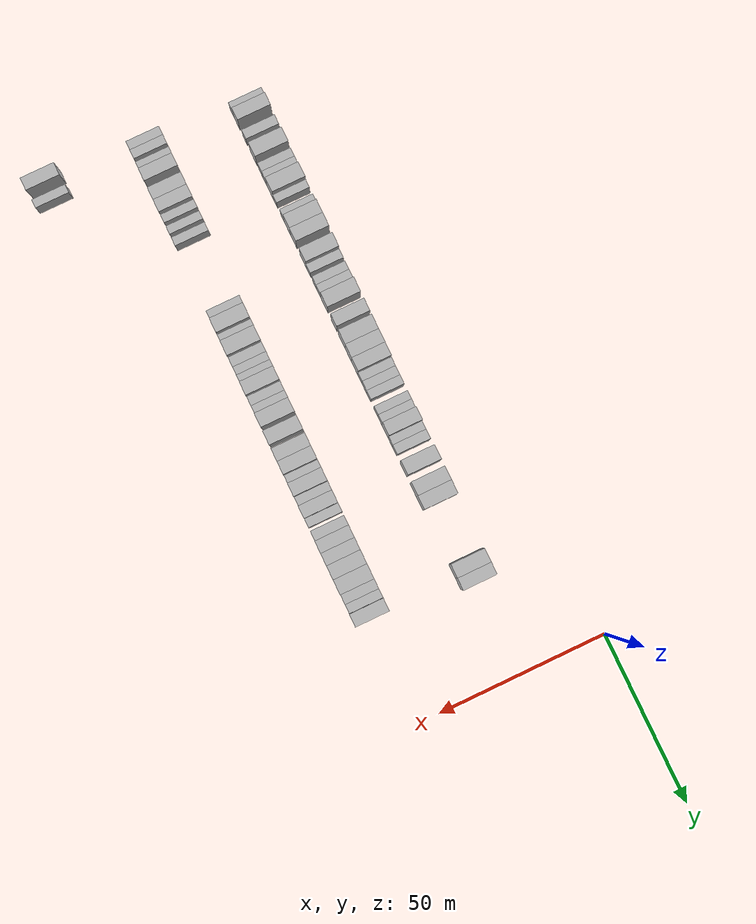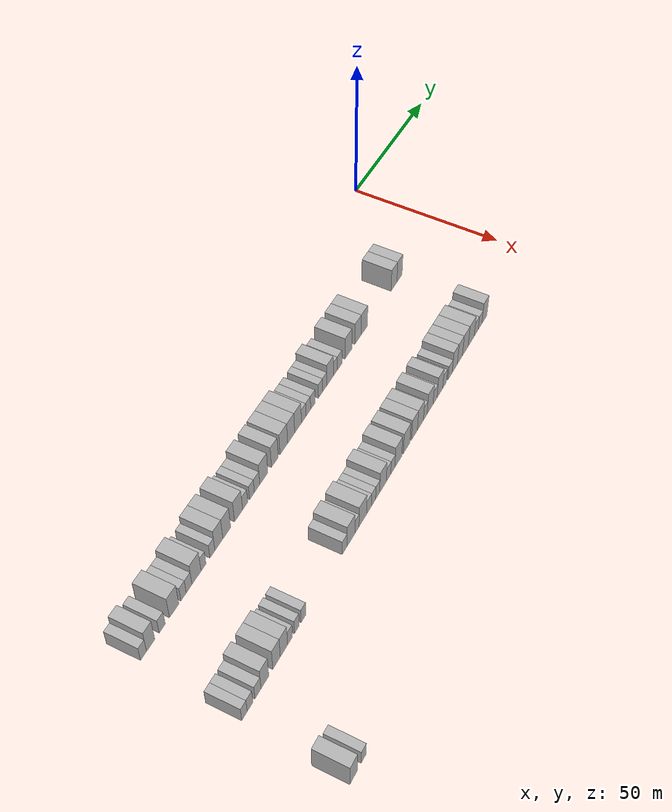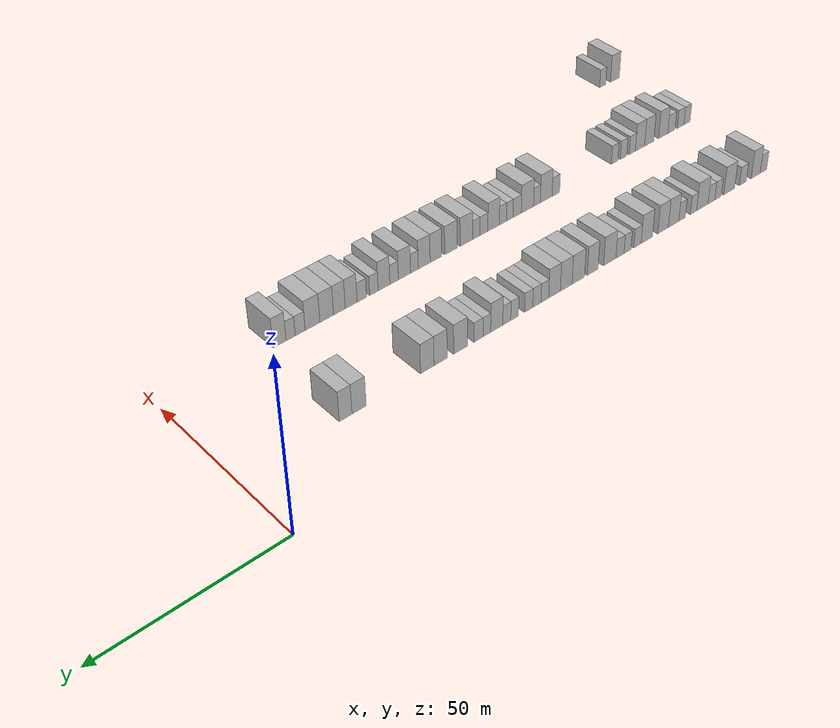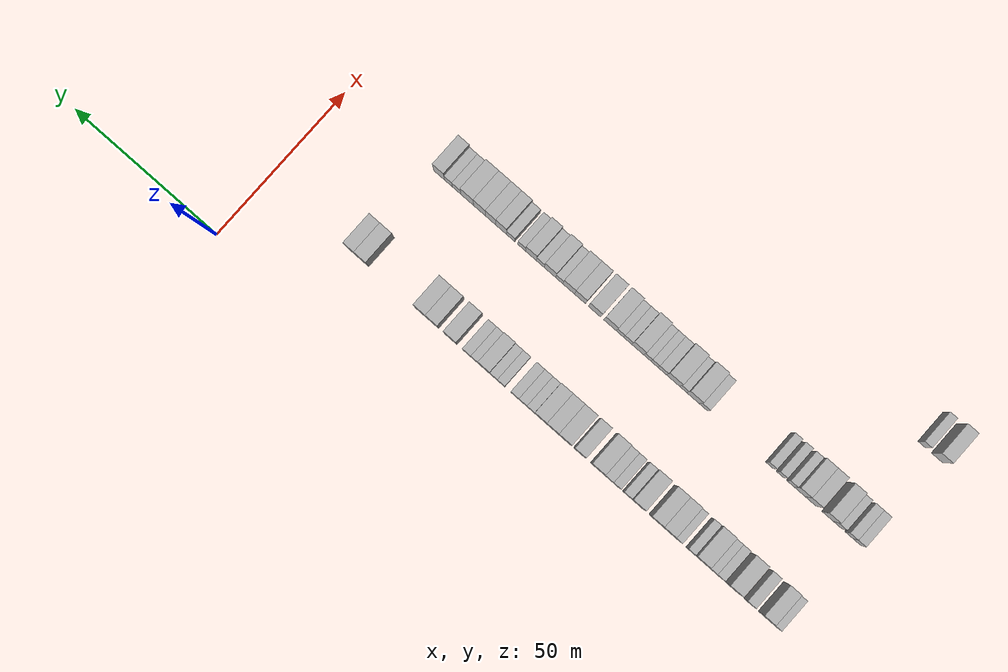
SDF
<sdf version="1.6">
 <world name="default">
  <model name="building_65">
   <static>1</static>
   <pose>25.0000 -173.8294 0 0.000000 0.000000 0.000000</pose>
   <link name="link">
    <pose>0 0 3.00 0 0 0</pose>
    <collision name="collision"><geometry><box><size>10.0000 2.7336 6.0000</size></box></geometry></collision>
    <visual name="visual">
     <cast_shadows>0</cast_shadows>
     <geometry><box><size>10.0000 2.7336 6.0000</size></box></geometry>
     <material>
      <script>
       <uri>model://HANNAS_wall/materials/scripts</uri>
       <uri>model://HANNAS_wall/materials/textures</uri>
       <name>vrc/HANNAS_wall</name>
      </script>
     </material>
    </visual>
   </link>
  </model>
  <model name="building_66">
   <static>1</static>
   <pose>25.0000 -170.5911 0 0.000000 0.000000 0.000000</pose>
   <link name="link">
    <pose>0 0 4.50 0 0 0</pose>
    <collision name="collision"><geometry><box><size>10.0000 3.7430 9.0000</size></box></geometry></collision>
    <visual name="visual">
     <cast_shadows>0</cast_shadows>
     <geometry><box><size>10.0000 3.7430 9.0000</size></box></geometry>
     <material>
      <script>
       <uri>model://HANNAS_wall/materials/scripts</uri>
       <uri>model://HANNAS_wall/materials/textures</uri>
       <name>vrc/HANNAS_wall</name>
      </script>
     </material>
    </visual>
   </link>
  </model>
  <model name="building_67">
   <static>1</static>
   <pose>25.0000 -165.2950 0 0.000000 0.000000 0.000000</pose>
   <link name="link">
    <pose>0 0 3.00 0 0 0</pose>
    <collision name="collision"><geometry><box><size>10.0000 2.8493 6.0000</size></box></geometry></collision>
    <visual name="visual">
     <cast_shadows>0</cast_shadows>
     <geometry><box><size>10.0000 2.8493 6.0000</size></box></geometry>
     <material>
      <script>
       <uri>model://HANNAS_wall/materials/scripts</uri>
       <uri>model://HANNAS_wall/materials/textures</uri>
       <name>vrc/HANNAS_wall</name>
      </script>
     </material>
    </visual>
   </link>
  </model>
  <model name="building_68">
   <static>1</static>
   <pose>25.0000 -159.6716 0 0.000000 0.000000 0.000000</pose>
   <link name="link">
    <pose>0 0 4.50 0 0 0</pose>
    <collision name="collision"><geometry><box><size>10.0000 4.3974 9.0000</size></box></geometry></collision>
    <visual name="visual">
     <cast_shadows>0</cast_shadows>
     <geometry><box><size>10.0000 4.3974 9.0000</size></box></geometry>
     <material>
      <script>
       <uri>model://HANNAS_wall/materials/scripts</uri>
       <uri>model://HANNAS_wall/materials/textures</uri>
       <name>vrc/HANNAS_wall</name>
      </script>
     </material>
    </visual>
   </link>
  </model>
  <model name="building_69">
   <static>1</static>
   <pose>25.0000 -155.1851 0 0.000000 0.000000 0.000000</pose>
   <link name="link">
    <pose>0 0 3.00 0 0 0</pose>
    <collision name="collision"><geometry><box><size>10.0000 2.5757 6.0000</size></box></geometry></collision>
    <visual name="visual">
     <cast_shadows>0</cast_shadows>
     <geometry><box><size>10.0000 2.5757 6.0000</size></box></geometry>
     <material>
      <script>
       <uri>model://HANNAS_wall/materials/scripts</uri>
       <uri>model://HANNAS_wall/materials/textures</uri>
       <name>vrc/HANNAS_wall</name>
      </script>
     </material>
    </visual>
   </link>
  </model>
  <model name="building_70">
   <static>1</static>
   <pose>25.0000 -152.5151 0 0.000000 0.000000 0.000000</pose>
   <link name="link">
    <pose>0 0 3.00 0 0 0</pose>
    <collision name="collision"><geometry><box><size>10.0000 2.7643 6.0000</size></box></geometry></collision>
    <visual name="visual">
     <cast_shadows>0</cast_shadows>
     <geometry><box><size>10.0000 2.7643 6.0000</size></box></geometry>
     <material>
      <script>
       <uri>model://HANNAS_wall/materials/scripts</uri>
       <uri>model://HANNAS_wall/materials/textures</uri>
       <name>vrc/HANNAS_wall</name>
      </script>
     </material>
    </visual>
   </link>
  </model>
  <model name="building_71">
   <static>1</static>
   <pose>25.0000 -148.8898 0 0.000000 0.000000 0.000000</pose>
   <link name="link">
    <pose>0 0 4.50 0 0 0</pose>
    <collision name="collision"><geometry><box><size>10.0000 4.4863 9.0000</size></box></geometry></collision>
    <visual name="visual">
     <cast_shadows>0</cast_shadows>
     <geometry><box><size>10.0000 4.4863 9.0000</size></box></geometry>
     <material>
      <script>
       <uri>model://HANNAS_wall/materials/scripts</uri>
       <uri>model://HANNAS_wall/materials/textures</uri>
       <name>vrc/HANNAS_wall</name>
      </script>
     </material>
    </visual>
   </link>
  </model>
  <model name="building_72">
   <static>1</static>
   <pose>25.0000 -145.4337 0 0.000000 0.000000 0.000000</pose>
   <link name="link">
    <pose>0 0 3.00 0 0 0</pose>
    <collision name="collision"><geometry><box><size>10.0000 2.4259 6.0000</size></box></geometry></collision>
    <visual name="visual">
     <cast_shadows>0</cast_shadows>
     <geometry><box><size>10.0000 2.4259 6.0000</size></box></geometry>
     <material>
      <script>
       <uri>model://HANNAS_wall/materials/scripts</uri>
       <uri>model://HANNAS_wall/materials/textures</uri>
       <name>vrc/HANNAS_wall</name>
      </script>
     </material>
    </visual>
   </link>
  </model>
  <model name="building_73">
   <static>1</static>
   <pose>25.0000 -140.9664 0 0.000000 0.000000 0.000000</pose>
   <link name="link">
    <pose>0 0 3.00 0 0 0</pose>
    <collision name="collision"><geometry><box><size>10.0000 2.5087 6.0000</size></box></geometry></collision>
    <visual name="visual">
     <cast_shadows>0</cast_shadows>
     <geometry><box><size>10.0000 2.5087 6.0000</size></box></geometry>
     <material>
      <script>
       <uri>model://HANNAS_wall/materials/scripts</uri>
       <uri>model://HANNAS_wall/materials/textures</uri>
       <name>vrc/HANNAS_wall</name>
      </script>
     </material>
    </visual>
   </link>
  </model>
  <model name="building_74">
   <static>1</static>
   <pose>25.0000 -137.6919 0 0.000000 0.000000 0.000000</pose>
   <link name="link">
    <pose>0 0 4.50 0 0 0</pose>
    <collision name="collision"><geometry><box><size>10.0000 4.0403 9.0000</size></box></geometry></collision>
    <visual name="visual">
     <cast_shadows>0</cast_shadows>
     <geometry><box><size>10.0000 4.0403 9.0000</size></box></geometry>
     <material>
      <script>
       <uri>model://HANNAS_wall/materials/scripts</uri>
       <uri>model://HANNAS_wall/materials/textures</uri>
       <name>vrc/HANNAS_wall</name>
      </script>
     </material>
    </visual>
   </link>
  </model>
  <model name="building_75">
   <static>1</static>
   <pose>25.0000 -133.6516 0 0.000000 0.000000 0.000000</pose>
   <link name="link">
    <pose>0 0 4.50 0 0 0</pose>
    <collision name="collision"><geometry><box><size>10.0000 4.0403 9.0000</size></box></geometry></collision>
    <visual name="visual">
     <cast_shadows>0</cast_shadows>
     <geometry><box><size>10.0000 4.0403 9.0000</size></box></geometry>
     <material>
      <script>
       <uri>model://HANNAS_wall/materials/scripts</uri>
       <uri>model://HANNAS_wall/materials/textures</uri>
       <name>vrc/HANNAS_wall</name>
      </script>
     </material>
    </visual>
   </link>
  </model>
  <model name="building_76">
   <static>1</static>
   <pose>25.0000 -127.5075 0 0.000000 0.000000 0.000000</pose>
   <link name="link">
    <pose>0 0 4.50 0 0 0</pose>
    <collision name="collision"><geometry><box><size>10.0000 4.2479 9.0000</size></box></geometry></collision>
    <visual name="visual">
     <cast_shadows>0</cast_shadows>
     <geometry><box><size>10.0000 4.2479 9.0000</size></box></geometry>
     <material>
      <script>
       <uri>model://HANNAS_wall/materials/scripts</uri>
       <uri>model://HANNAS_wall/materials/textures</uri>
       <name>vrc/HANNAS_wall</name>
      </script>
     </material>
    </visual>
   </link>
  </model>
  <model name="building_77">
   <static>1</static>
   <pose>25.0000 -124.0210 0 0.000000 0.000000 0.000000</pose>
   <link name="link">
    <pose>0 0 3.00 0 0 0</pose>
    <collision name="collision"><geometry><box><size>10.0000 2.7253 6.0000</size></box></geometry></collision>
    <visual name="visual">
     <cast_shadows>0</cast_shadows>
     <geometry><box><size>10.0000 2.7253 6.0000</size></box></geometry>
     <material>
      <script>
       <uri>model://HANNAS_wall/materials/scripts</uri>
       <uri>model://HANNAS_wall/materials/textures</uri>
       <name>vrc/HANNAS_wall</name>
      </script>
     </material>
    </visual>
   </link>
  </model>
  <model name="building_78">
   <static>1</static>
   <pose>25.0000 -120.3752 0 0.000000 0.000000 0.000000</pose>
   <link name="link">
    <pose>0 0 3.00 0 0 0</pose>
    <collision name="collision"><geometry><box><size>10.0000 2.5663 6.0000</size></box></geometry></collision>
    <visual name="visual">
     <cast_shadows>0</cast_shadows>
     <geometry><box><size>10.0000 2.5663 6.0000</size></box></geometry>
     <material>
      <script>
       <uri>model://HANNAS_wall/materials/scripts</uri>
       <uri>model://HANNAS_wall/materials/textures</uri>
       <name>vrc/HANNAS_wall</name>
      </script>
     </material>
    </visual>
   </link>
  </model>
  <model name="building_79">
   <static>1</static>
   <pose>25.0000 -117.6062 0 0.000000 0.000000 0.000000</pose>
   <link name="link">
    <pose>0 0 3.00 0 0 0</pose>
    <collision name="collision"><geometry><box><size>10.0000 2.9716 6.0000</size></box></geometry></collision>
    <visual name="visual">
     <cast_shadows>0</cast_shadows>
     <geometry><box><size>10.0000 2.9716 6.0000</size></box></geometry>
     <material>
      <script>
       <uri>model://HANNAS_wall/materials/scripts</uri>
       <uri>model://HANNAS_wall/materials/textures</uri>
       <name>vrc/HANNAS_wall</name>
      </script>
     </material>
    </visual>
   </link>
  </model>
  <model name="building_80">
   <static>1</static>
   <pose>25.0000 -113.9055 0 0.000000 0.000000 0.000000</pose>
   <link name="link">
    <pose>0 0 4.50 0 0 0</pose>
    <collision name="collision"><geometry><box><size>10.0000 4.4298 9.0000</size></box></geometry></collision>
    <visual name="visual">
     <cast_shadows>0</cast_shadows>
     <geometry><box><size>10.0000 4.4298 9.0000</size></box></geometry>
     <material>
      <script>
       <uri>model://HANNAS_wall/materials/scripts</uri>
       <uri>model://HANNAS_wall/materials/textures</uri>
       <name>vrc/HANNAS_wall</name>
      </script>
     </material>
    </visual>
   </link>
  </model>
  <model name="building_81">
   <static>1</static>
   <pose>25.0000 -107.7932 0 0.000000 0.000000 0.000000</pose>
   <link name="link">
    <pose>0 0 4.50 0 0 0</pose>
    <collision name="collision"><geometry><box><size>10.0000 3.7948 9.0000</size></box></geometry></collision>
    <visual name="visual">
     <cast_shadows>0</cast_shadows>
     <geometry><box><size>10.0000 3.7948 9.0000</size></box></geometry>
     <material>
      <script>
       <uri>model://HANNAS_wall/materials/scripts</uri>
       <uri>model://HANNAS_wall/materials/textures</uri>
       <name>vrc/HANNAS_wall</name>
      </script>
     </material>
    </visual>
   </link>
  </model>
  <model name="building_82">
   <static>1</static>
   <pose>25.0000 -102.7055 0 0.000000 0.000000 0.000000</pose>
   <link name="link">
    <pose>0 0 4.50 0 0 0</pose>
    <collision name="collision"><geometry><box><size>10.0000 4.3806 9.0000</size></box></geometry></collision>
    <visual name="visual">
     <cast_shadows>0</cast_shadows>
     <geometry><box><size>10.0000 4.3806 9.0000</size></box></geometry>
     <material>
      <script>
       <uri>model://HANNAS_wall/materials/scripts</uri>
       <uri>model://HANNAS_wall/materials/textures</uri>
       <name>vrc/HANNAS_wall</name>
      </script>
     </material>
    </visual>
   </link>
  </model>
  <model name="building_83">
   <static>1</static>
   <pose>25.0000 -98.4993 0 0.000000 0.000000 0.000000</pose>
   <link name="link">
    <pose>0 0 4.50 0 0 0</pose>
    <collision name="collision"><geometry><box><size>10.0000 4.0318 9.0000</size></box></geometry></collision>
    <visual name="visual">
     <cast_shadows>0</cast_shadows>
     <geometry><box><size>10.0000 4.0318 9.0000</size></box></geometry>
     <material>
      <script>
       <uri>model://HANNAS_wall/materials/scripts</uri>
       <uri>model://HANNAS_wall/materials/textures</uri>
       <name>vrc/HANNAS_wall</name>
      </script>
     </material>
    </visual>
   </link>
  </model>
  <model name="building_84">
   <static>1</static>
   <pose>25.0000 -94.4775 0 0.000000 0.000000 0.000000</pose>
   <link name="link">
    <pose>0 0 4.50 0 0 0</pose>
    <collision name="collision"><geometry><box><size>10.0000 4.0117 9.0000</size></box></geometry></collision>
    <visual name="visual">
     <cast_shadows>0</cast_shadows>
     <geometry><box><size>10.0000 4.0117 9.0000</size></box></geometry>
     <material>
      <script>
       <uri>model://HANNAS_wall/materials/scripts</uri>
       <uri>model://HANNAS_wall/materials/textures</uri>
       <name>vrc/HANNAS_wall</name>
      </script>
     </material>
    </visual>
   </link>
  </model>
  <model name="building_85">
   <static>1</static>
   <pose>25.0000 -91.1583 0 0.000000 0.000000 0.000000</pose>
   <link name="link">
    <pose>0 0 3.00 0 0 0</pose>
    <collision name="collision"><geometry><box><size>10.0000 2.6267 6.0000</size></box></geometry></collision>
    <visual name="visual">
     <cast_shadows>0</cast_shadows>
     <geometry><box><size>10.0000 2.6267 6.0000</size></box></geometry>
     <material>
      <script>
       <uri>model://HANNAS_wall/materials/scripts</uri>
       <uri>model://HANNAS_wall/materials/textures</uri>
       <name>vrc/HANNAS_wall</name>
      </script>
     </material>
    </visual>
   </link>
  </model>
  <model name="building_86">
   <static>1</static>
   <pose>25.0000 -88.4710 0 0.000000 0.000000 0.000000</pose>
   <link name="link">
    <pose>0 0 3.00 0 0 0</pose>
    <collision name="collision"><geometry><box><size>10.0000 2.7479 6.0000</size></box></geometry></collision>
    <visual name="visual">
     <cast_shadows>0</cast_shadows>
     <geometry><box><size>10.0000 2.7479 6.0000</size></box></geometry>
     <material>
      <script>
       <uri>model://HANNAS_wall/materials/scripts</uri>
       <uri>model://HANNAS_wall/materials/textures</uri>
       <name>vrc/HANNAS_wall</name>
      </script>
     </material>
    </visual>
   </link>
  </model>
  <model name="building_87">
   <static>1</static>
   <pose>25.0000 -85.7237 0 0.000000 0.000000 0.000000</pose>
   <link name="link">
    <pose>0 0 3.00 0 0 0</pose>
    <collision name="collision"><geometry><box><size>10.0000 2.7467 6.0000</size></box></geometry></collision>
    <visual name="visual">
     <cast_shadows>0</cast_shadows>
     <geometry><box><size>10.0000 2.7467 6.0000</size></box></geometry>
     <material>
      <script>
       <uri>model://HANNAS_wall/materials/scripts</uri>
       <uri>model://HANNAS_wall/materials/textures</uri>
       <name>vrc/HANNAS_wall</name>
      </script>
     </material>
    </visual>
   </link>
  </model>
  <model name="building_88">
   <static>1</static>
   <pose>25.0000 -81.0692 0 0.000000 0.000000 0.000000</pose>
   <link name="link">
    <pose>0 0 3.00 0 0 0</pose>
    <collision name="collision"><geometry><box><size>10.0000 2.5622 6.0000</size></box></geometry></collision>
    <visual name="visual">
     <cast_shadows>0</cast_shadows>
     <geometry><box><size>10.0000 2.5622 6.0000</size></box></geometry>
     <material>
      <script>
       <uri>model://HANNAS_wall/materials/scripts</uri>
       <uri>model://HANNAS_wall/materials/textures</uri>
       <name>vrc/HANNAS_wall</name>
      </script>
     </material>
    </visual>
   </link>
  </model>
  <model name="building_89">
   <static>1</static>
   <pose>25.0000 -78.4886 0 0.000000 0.000000 0.000000</pose>
   <link name="link">
    <pose>0 0 3.00 0 0 0</pose>
    <collision name="collision"><geometry><box><size>10.0000 2.5990 6.0000</size></box></geometry></collision>
    <visual name="visual">
     <cast_shadows>0</cast_shadows>
     <geometry><box><size>10.0000 2.5990 6.0000</size></box></geometry>
     <material>
      <script>
       <uri>model://HANNAS_wall/materials/scripts</uri>
       <uri>model://HANNAS_wall/materials/textures</uri>
       <name>vrc/HANNAS_wall</name>
      </script>
     </material>
    </visual>
   </link>
  </model>
  <model name="building_90">
   <static>1</static>
   <pose>25.0000 -75.2040 0 0.000000 0.000000 0.000000</pose>
   <link name="link">
    <pose>0 0 4.50 0 0 0</pose>
    <collision name="collision"><geometry><box><size>10.0000 3.9703 9.0000</size></box></geometry></collision>
    <visual name="visual">
     <cast_shadows>0</cast_shadows>
     <geometry><box><size>10.0000 3.9703 9.0000</size></box></geometry>
     <material>
      <script>
       <uri>model://HANNAS_wall/materials/scripts</uri>
       <uri>model://HANNAS_wall/materials/textures</uri>
       <name>vrc/HANNAS_wall</name>
      </script>
     </material>
    </visual>
   </link>
  </model>
  <model name="building_91">
   <static>1</static>
   <pose>25.0000 -71.9762 0 0.000000 0.000000 0.000000</pose>
   <link name="link">
    <pose>0 0 3.00 0 0 0</pose>
    <collision name="collision"><geometry><box><size>10.0000 2.4852 6.0000</size></box></geometry></collision>
    <visual name="visual">
     <cast_shadows>0</cast_shadows>
     <geometry><box><size>10.0000 2.4852 6.0000</size></box></geometry>
     <material>
      <script>
       <uri>model://HANNAS_wall/materials/scripts</uri>
       <uri>model://HANNAS_wall/materials/textures</uri>
       <name>vrc/HANNAS_wall</name>
      </script>
     </material>
    </visual>
   </link>
  </model>
  <model name="building_92">
   <static>1</static>
   <pose>25.0000 -69.2979 0 0.000000 0.000000 0.000000</pose>
   <link name="link">
    <pose>0 0 3.00 0 0 0</pose>
    <collision name="collision"><geometry><box><size>10.0000 2.8715 6.0000</size></box></geometry></collision>
    <visual name="visual">
     <cast_shadows>0</cast_shadows>
     <geometry><box><size>10.0000 2.8715 6.0000</size></box></geometry>
     <material>
      <script>
       <uri>model://HANNAS_wall/materials/scripts</uri>
       <uri>model://HANNAS_wall/materials/textures</uri>
       <name>vrc/HANNAS_wall</name>
      </script>
     </material>
    </visual>
   </link>
  </model>
  <model name="building_93">
   <static>1</static>
   <pose>25.0000 -63.6790 0 0.000000 0.000000 0.000000</pose>
   <link name="link">
    <pose>0 0 4.50 0 0 0</pose>
    <collision name="collision"><geometry><box><size>10.0000 4.3662 9.0000</size></box></geometry></collision>
    <visual name="visual">
     <cast_shadows>0</cast_shadows>
     <geometry><box><size>10.0000 4.3662 9.0000</size></box></geometry>
     <material>
      <script>
       <uri>model://HANNAS_wall/materials/scripts</uri>
       <uri>model://HANNAS_wall/materials/textures</uri>
       <name>vrc/HANNAS_wall</name>
      </script>
     </material>
    </visual>
   </link>
  </model>
  <model name="building_94">
   <static>1</static>
   <pose>25.0000 -57.4563 0 0.000000 0.000000 0.000000</pose>
   <link name="link">
    <pose>0 0 4.50 0 0 0</pose>
    <collision name="collision"><geometry><box><size>10.0000 4.0792 9.0000</size></box></geometry></collision>
    <visual name="visual">
     <cast_shadows>0</cast_shadows>
     <geometry><box><size>10.0000 4.0792 9.0000</size></box></geometry>
     <material>
      <script>
       <uri>model://HANNAS_wall/materials/scripts</uri>
       <uri>model://HANNAS_wall/materials/textures</uri>
       <name>vrc/HANNAS_wall</name>
      </script>
     </material>
    </visual>
   </link>
  </model>
  <model name="building_95">
   <static>1</static>
   <pose>25.0000 -53.3554 0 0.000000 0.000000 0.000000</pose>
   <link name="link">
    <pose>0 0 4.50 0 0 0</pose>
    <collision name="collision"><geometry><box><size>10.0000 4.1227 9.0000</size></box></geometry></collision>
    <visual name="visual">
     <cast_shadows>0</cast_shadows>
     <geometry><box><size>10.0000 4.1227 9.0000</size></box></geometry>
     <material>
      <script>
       <uri>model://HANNAS_wall/materials/scripts</uri>
       <uri>model://HANNAS_wall/materials/textures</uri>
       <name>vrc/HANNAS_wall</name>
      </script>
     </material>
    </visual>
   </link>
  </model>
  <model name="building_96">
   <static>1</static>
   <pose>25.0000 -33.1854 0 0.000000 0.000000 0.000000</pose>
   <link name="link">
    <pose>0 0 4.50 0 0 0</pose>
    <collision name="collision"><geometry><box><size>10.0000 4.0724 9.0000</size></box></geometry></collision>
    <visual name="visual">
     <cast_shadows>0</cast_shadows>
     <geometry><box><size>10.0000 4.0724 9.0000</size></box></geometry>
     <material>
      <script>
       <uri>model://HANNAS_wall/materials/scripts</uri>
       <uri>model://HANNAS_wall/materials/textures</uri>
       <name>vrc/HANNAS_wall</name>
      </script>
     </material>
    </visual>
   </link>
  </model>
  <model name="building_97">
   <static>1</static>
   <pose>25.0000 -29.3353 0 0.000000 0.000000 0.000000</pose>
   <link name="link">
    <pose>0 0 4.50 0 0 0</pose>
    <collision name="collision"><geometry><box><size>10.0000 3.6278 9.0000</size></box></geometry></collision>
    <visual name="visual">
     <cast_shadows>0</cast_shadows>
     <geometry><box><size>10.0000 3.6278 9.0000</size></box></geometry>
     <material>
      <script>
       <uri>model://HANNAS_wall/materials/scripts</uri>
       <uri>model://HANNAS_wall/materials/textures</uri>
       <name>vrc/HANNAS_wall</name>
      </script>
     </material>
    </visual>
   </link>
  </model>
  <model name="building_293">
   <static>1</static>
   <pose>55.0000 -176.1431 0 0.000000 0.000000 0.000000</pose>
   <link name="link">
    <pose>0 0 3.00 0 0 0</pose>
    <collision name="collision"><geometry><box><size>10.0000 2.6094 6.0000</size></box></geometry></collision>
    <visual name="visual">
     <cast_shadows>0</cast_shadows>
     <geometry><box><size>10.0000 2.6094 6.0000</size></box></geometry>
     <material>
      <script>
       <uri>model://HANNAS_wall/materials/scripts</uri>
       <uri>model://HANNAS_wall/materials/textures</uri>
       <name>vrc/HANNAS_wall</name>
      </script>
     </material>
    </visual>
   </link>
  </model>
  <model name="building_294">
   <static>1</static>
   <pose>55.0000 -173.4839 0 0.000000 0.000000 0.000000</pose>
   <link name="link">
    <pose>0 0 3.00 0 0 0</pose>
    <collision name="collision"><geometry><box><size>10.0000 2.7089 6.0000</size></box></geometry></collision>
    <visual name="visual">
     <cast_shadows>0</cast_shadows>
     <geometry><box><size>10.0000 2.7089 6.0000</size></box></geometry>
     <material>
      <script>
       <uri>model://HANNAS_wall/materials/scripts</uri>
       <uri>model://HANNAS_wall/materials/textures</uri>
       <name>vrc/HANNAS_wall</name>
      </script>
     </material>
    </visual>
   </link>
  </model>
  <model name="building_295">
   <static>1</static>
   <pose>55.0000 -169.6611 0 0.000000 0.000000 0.000000</pose>
   <link name="link">
    <pose>0 0 3.00 0 0 0</pose>
    <collision name="collision"><geometry><box><size>10.0000 2.9366 6.0000</size></box></geometry></collision>
    <visual name="visual">
     <cast_shadows>0</cast_shadows>
     <geometry><box><size>10.0000 2.9366 6.0000</size></box></geometry>
     <material>
      <script>
       <uri>model://HANNAS_wall/materials/scripts</uri>
       <uri>model://HANNAS_wall/materials/textures</uri>
       <name>vrc/HANNAS_wall</name>
      </script>
     </material>
    </visual>
   </link>
  </model>
  <model name="building_296">
   <static>1</static>
   <pose>55.0000 -166.2671 0 0.000000 0.000000 0.000000</pose>
   <link name="link">
    <pose>0 0 4.50 0 0 0</pose>
    <collision name="collision"><geometry><box><size>10.0000 3.8515 9.0000</size></box></geometry></collision>
    <visual name="visual">
     <cast_shadows>0</cast_shadows>
     <geometry><box><size>10.0000 3.8515 9.0000</size></box></geometry>
     <material>
      <script>
       <uri>model://HANNAS_wall/materials/scripts</uri>
       <uri>model://HANNAS_wall/materials/textures</uri>
       <name>vrc/HANNAS_wall</name>
      </script>
     </material>
    </visual>
   </link>
  </model>
  <model name="building_297">
   <static>1</static>
   <pose>55.0000 -160.4701 0 0.000000 0.000000 0.000000</pose>
   <link name="link">
    <pose>0 0 4.50 0 0 0</pose>
    <collision name="collision"><geometry><box><size>10.0000 3.7425 9.0000</size></box></geometry></collision>
    <visual name="visual">
     <cast_shadows>0</cast_shadows>
     <geometry><box><size>10.0000 3.7425 9.0000</size></box></geometry>
     <material>
      <script>
       <uri>model://HANNAS_wall/materials/scripts</uri>
       <uri>model://HANNAS_wall/materials/textures</uri>
       <name>vrc/HANNAS_wall</name>
      </script>
     </material>
    </visual>
   </link>
  </model>
  <model name="building_298">
   <static>1</static>
   <pose>55.0000 -156.7333 0 0.000000 0.000000 0.000000</pose>
   <link name="link">
    <pose>0 0 4.50 0 0 0</pose>
    <collision name="collision"><geometry><box><size>10.0000 3.7312 9.0000</size></box></geometry></collision>
    <visual name="visual">
     <cast_shadows>0</cast_shadows>
     <geometry><box><size>10.0000 3.7312 9.0000</size></box></geometry>
     <material>
      <script>
       <uri>model://HANNAS_wall/materials/scripts</uri>
       <uri>model://HANNAS_wall/materials/textures</uri>
       <name>vrc/HANNAS_wall</name>
      </script>
     </material>
    </visual>
   </link>
  </model>
  <model name="building_299">
   <static>1</static>
   <pose>55.0000 -153.6113 0 0.000000 0.000000 0.000000</pose>
   <link name="link">
    <pose>0 0 3.00 0 0 0</pose>
    <collision name="collision"><geometry><box><size>10.0000 2.5127 6.0000</size></box></geometry></collision>
    <visual name="visual">
     <cast_shadows>0</cast_shadows>
     <geometry><box><size>10.0000 2.5127 6.0000</size></box></geometry>
     <material>
      <script>
       <uri>model://HANNAS_wall/materials/scripts</uri>
       <uri>model://HANNAS_wall/materials/textures</uri>
       <name>vrc/HANNAS_wall</name>
      </script>
     </material>
    </visual>
   </link>
  </model>
  <model name="building_300">
   <static>1</static>
   <pose>55.0000 -150.1097 0 0.000000 0.000000 0.000000</pose>
   <link name="link">
    <pose>0 0 3.00 0 0 0</pose>
    <collision name="collision"><geometry><box><size>10.0000 2.4907 6.0000</size></box></geometry></collision>
    <visual name="visual">
     <cast_shadows>0</cast_shadows>
     <geometry><box><size>10.0000 2.4907 6.0000</size></box></geometry>
     <material>
      <script>
       <uri>model://HANNAS_wall/materials/scripts</uri>
       <uri>model://HANNAS_wall/materials/textures</uri>
       <name>vrc/HANNAS_wall</name>
      </script>
     </material>
    </visual>
   </link>
  </model>
  <model name="building_301">
   <static>1</static>
   <pose>55.0000 -146.5846 0 0.000000 0.000000 0.000000</pose>
   <link name="link">
    <pose>0 0 3.00 0 0 0</pose>
    <collision name="collision"><geometry><box><size>10.0000 2.5594 6.0000</size></box></geometry></collision>
    <visual name="visual">
     <cast_shadows>0</cast_shadows>
     <geometry><box><size>10.0000 2.5594 6.0000</size></box></geometry>
     <material>
      <script>
       <uri>model://HANNAS_wall/materials/scripts</uri>
       <uri>model://HANNAS_wall/materials/textures</uri>
       <name>vrc/HANNAS_wall</name>
      </script>
     </material>
    </visual>
   </link>
  </model>
  <model name="building_302">
   <static>1</static>
   <pose>55.0000 -124.0738 0 0.000000 0.000000 0.000000</pose>
   <link name="link">
    <pose>0 0 3.00 0 0 0</pose>
    <collision name="collision"><geometry><box><size>10.0000 2.8207 6.0000</size></box></geometry></collision>
    <visual name="visual">
     <cast_shadows>0</cast_shadows>
     <geometry><box><size>10.0000 2.8207 6.0000</size></box></geometry>
     <material>
      <script>
       <uri>model://HANNAS_wall/materials/scripts</uri>
       <uri>model://HANNAS_wall/materials/textures</uri>
       <name>vrc/HANNAS_wall</name>
      </script>
     </material>
    </visual>
   </link>
  </model>
  <model name="building_303">
   <static>1</static>
   <pose>55.0000 -120.4865 0 0.000000 0.000000 0.000000</pose>
   <link name="link">
    <pose>0 0 4.50 0 0 0</pose>
    <collision name="collision"><geometry><box><size>10.0000 4.3540 9.0000</size></box></geometry></collision>
    <visual name="visual">
     <cast_shadows>0</cast_shadows>
     <geometry><box><size>10.0000 4.3540 9.0000</size></box></geometry>
     <material>
      <script>
       <uri>model://HANNAS_wall/materials/scripts</uri>
       <uri>model://HANNAS_wall/materials/textures</uri>
       <name>vrc/HANNAS_wall</name>
      </script>
     </material>
    </visual>
   </link>
  </model>
  <model name="building_304">
   <static>1</static>
   <pose>55.0000 -117.0992 0 0.000000 0.000000 0.000000</pose>
   <link name="link">
    <pose>0 0 3.00 0 0 0</pose>
    <collision name="collision"><geometry><box><size>10.0000 2.4206 6.0000</size></box></geometry></collision>
    <visual name="visual">
     <cast_shadows>0</cast_shadows>
     <geometry><box><size>10.0000 2.4206 6.0000</size></box></geometry>
     <material>
      <script>
       <uri>model://HANNAS_wall/materials/scripts</uri>
       <uri>model://HANNAS_wall/materials/textures</uri>
       <name>vrc/HANNAS_wall</name>
      </script>
     </material>
    </visual>
   </link>
  </model>
  <model name="building_305">
   <static>1</static>
   <pose>55.0000 -113.6443 0 0.000000 0.000000 0.000000</pose>
   <link name="link">
    <pose>0 0 4.50 0 0 0</pose>
    <collision name="collision"><geometry><box><size>10.0000 4.4891 9.0000</size></box></geometry></collision>
    <visual name="visual">
     <cast_shadows>0</cast_shadows>
     <geometry><box><size>10.0000 4.4891 9.0000</size></box></geometry>
     <material>
      <script>
       <uri>model://HANNAS_wall/materials/scripts</uri>
       <uri>model://HANNAS_wall/materials/textures</uri>
       <name>vrc/HANNAS_wall</name>
      </script>
     </material>
    </visual>
   </link>
  </model>
  <model name="building_306">
   <static>1</static>
   <pose>55.0000 -109.9319 0 0.000000 0.000000 0.000000</pose>
   <link name="link">
    <pose>0 0 3.00 0 0 0</pose>
    <collision name="collision"><geometry><box><size>10.0000 2.9357 6.0000</size></box></geometry></collision>
    <visual name="visual">
     <cast_shadows>0</cast_shadows>
     <geometry><box><size>10.0000 2.9357 6.0000</size></box></geometry>
     <material>
      <script>
       <uri>model://HANNAS_wall/materials/scripts</uri>
       <uri>model://HANNAS_wall/materials/textures</uri>
       <name>vrc/HANNAS_wall</name>
      </script>
     </material>
    </visual>
   </link>
  </model>
  <model name="building_307">
   <static>1</static>
   <pose>55.0000 -107.2607 0 0.000000 0.000000 0.000000</pose>
   <link name="link">
    <pose>0 0 3.00 0 0 0</pose>
    <collision name="collision"><geometry><box><size>10.0000 2.4069 6.0000</size></box></geometry></collision>
    <visual name="visual">
     <cast_shadows>0</cast_shadows>
     <geometry><box><size>10.0000 2.4069 6.0000</size></box></geometry>
     <material>
      <script>
       <uri>model://HANNAS_wall/materials/scripts</uri>
       <uri>model://HANNAS_wall/materials/textures</uri>
       <name>vrc/HANNAS_wall</name>
      </script>
     </material>
    </visual>
   </link>
  </model>
  <model name="building_308">
   <static>1</static>
   <pose>55.0000 -104.8428 0 0.000000 0.000000 0.000000</pose>
   <link name="link">
    <pose>0 0 3.00 0 0 0</pose>
    <collision name="collision"><geometry><box><size>10.0000 2.4288 6.0000</size></box></geometry></collision>
    <visual name="visual">
     <cast_shadows>0</cast_shadows>
     <geometry><box><size>10.0000 2.4288 6.0000</size></box></geometry>
     <material>
      <script>
       <uri>model://HANNAS_wall/materials/scripts</uri>
       <uri>model://HANNAS_wall/materials/textures</uri>
       <name>vrc/HANNAS_wall</name>
      </script>
     </material>
    </visual>
   </link>
  </model>
  <model name="building_309">
   <static>1</static>
   <pose>55.0000 -101.5857 0 0.000000 0.000000 0.000000</pose>
   <link name="link">
    <pose>0 0 4.50 0 0 0</pose>
    <collision name="collision"><geometry><box><size>10.0000 4.0855 9.0000</size></box></geometry></collision>
    <visual name="visual">
     <cast_shadows>0</cast_shadows>
     <geometry><box><size>10.0000 4.0855 9.0000</size></box></geometry>
     <material>
      <script>
       <uri>model://HANNAS_wall/materials/scripts</uri>
       <uri>model://HANNAS_wall/materials/textures</uri>
       <name>vrc/HANNAS_wall</name>
      </script>
     </material>
    </visual>
   </link>
  </model>
  <model name="building_310">
   <static>1</static>
   <pose>55.0000 -98.1644 0 0.000000 0.000000 0.000000</pose>
   <link name="link">
    <pose>0 0 3.00 0 0 0</pose>
    <collision name="collision"><geometry><box><size>10.0000 2.7570 6.0000</size></box></geometry></collision>
    <visual name="visual">
     <cast_shadows>0</cast_shadows>
     <geometry><box><size>10.0000 2.7570 6.0000</size></box></geometry>
     <material>
      <script>
       <uri>model://HANNAS_wall/materials/scripts</uri>
       <uri>model://HANNAS_wall/materials/textures</uri>
       <name>vrc/HANNAS_wall</name>
      </script>
     </material>
    </visual>
   </link>
  </model>
  <model name="building_311">
   <static>1</static>
   <pose>55.0000 -95.5019 0 0.000000 0.000000 0.000000</pose>
   <link name="link">
    <pose>0 0 3.00 0 0 0</pose>
    <collision name="collision"><geometry><box><size>10.0000 2.5680 6.0000</size></box></geometry></collision>
    <visual name="visual">
     <cast_shadows>0</cast_shadows>
     <geometry><box><size>10.0000 2.5680 6.0000</size></box></geometry>
     <material>
      <script>
       <uri>model://HANNAS_wall/materials/scripts</uri>
       <uri>model://HANNAS_wall/materials/textures</uri>
       <name>vrc/HANNAS_wall</name>
      </script>
     </material>
    </visual>
   </link>
  </model>
  <model name="building_312">
   <static>1</static>
   <pose>55.0000 -92.0852 0 0.000000 0.000000 0.000000</pose>
   <link name="link">
    <pose>0 0 4.50 0 0 0</pose>
    <collision name="collision"><geometry><box><size>10.0000 4.2654 9.0000</size></box></geometry></collision>
    <visual name="visual">
     <cast_shadows>0</cast_shadows>
     <geometry><box><size>10.0000 4.2654 9.0000</size></box></geometry>
     <material>
      <script>
       <uri>model://HANNAS_wall/materials/scripts</uri>
       <uri>model://HANNAS_wall/materials/textures</uri>
       <name>vrc/HANNAS_wall</name>
      </script>
     </material>
    </visual>
   </link>
  </model>
  <model name="building_313">
   <static>1</static>
   <pose>55.0000 -86.8245 0 0.000000 0.000000 0.000000</pose>
   <link name="link">
    <pose>0 0 4.50 0 0 0</pose>
    <collision name="collision"><geometry><box><size>10.0000 4.2560 9.0000</size></box></geometry></collision>
    <visual name="visual">
     <cast_shadows>0</cast_shadows>
     <geometry><box><size>10.0000 4.2560 9.0000</size></box></geometry>
     <material>
      <script>
       <uri>model://HANNAS_wall/materials/scripts</uri>
       <uri>model://HANNAS_wall/materials/textures</uri>
       <name>vrc/HANNAS_wall</name>
      </script>
     </material>
    </visual>
   </link>
  </model>
  <model name="building_314">
   <static>1</static>
   <pose>55.0000 -81.7816 0 0.000000 0.000000 0.000000</pose>
   <link name="link">
    <pose>0 0 4.50 0 0 0</pose>
    <collision name="collision"><geometry><box><size>10.0000 3.8299 9.0000</size></box></geometry></collision>
    <visual name="visual">
     <cast_shadows>0</cast_shadows>
     <geometry><box><size>10.0000 3.8299 9.0000</size></box></geometry>
     <material>
      <script>
       <uri>model://HANNAS_wall/materials/scripts</uri>
       <uri>model://HANNAS_wall/materials/textures</uri>
       <name>vrc/HANNAS_wall</name>
      </script>
     </material>
    </visual>
   </link>
  </model>
  <model name="building_315">
   <static>1</static>
   <pose>55.0000 -77.8969 0 0.000000 0.000000 0.000000</pose>
   <link name="link">
    <pose>0 0 4.50 0 0 0</pose>
    <collision name="collision"><geometry><box><size>10.0000 3.9395 9.0000</size></box></geometry></collision>
    <visual name="visual">
     <cast_shadows>0</cast_shadows>
     <geometry><box><size>10.0000 3.9395 9.0000</size></box></geometry>
     <material>
      <script>
       <uri>model://HANNAS_wall/materials/scripts</uri>
       <uri>model://HANNAS_wall/materials/textures</uri>
       <name>vrc/HANNAS_wall</name>
      </script>
     </material>
    </visual>
   </link>
  </model>
  <model name="building_316">
   <static>1</static>
   <pose>55.0000 -74.6661 0 0.000000 0.000000 0.000000</pose>
   <link name="link">
    <pose>0 0 3.00 0 0 0</pose>
    <collision name="collision"><geometry><box><size>10.0000 2.5219 6.0000</size></box></geometry></collision>
    <visual name="visual">
     <cast_shadows>0</cast_shadows>
     <geometry><box><size>10.0000 2.5219 6.0000</size></box></geometry>
     <material>
      <script>
       <uri>model://HANNAS_wall/materials/scripts</uri>
       <uri>model://HANNAS_wall/materials/textures</uri>
       <name>vrc/HANNAS_wall</name>
      </script>
     </material>
    </visual>
   </link>
  </model>
  <model name="building_317">
   <static>1</static>
   <pose>55.0000 -71.4328 0 0.000000 0.000000 0.000000</pose>
   <link name="link">
    <pose>0 0 4.50 0 0 0</pose>
    <collision name="collision"><geometry><box><size>10.0000 3.9449 9.0000</size></box></geometry></collision>
    <visual name="visual">
     <cast_shadows>0</cast_shadows>
     <geometry><box><size>10.0000 3.9449 9.0000</size></box></geometry>
     <material>
      <script>
       <uri>model://HANNAS_wall/materials/scripts</uri>
       <uri>model://HANNAS_wall/materials/textures</uri>
       <name>vrc/HANNAS_wall</name>
      </script>
     </material>
    </visual>
   </link>
  </model>
  <model name="building_318">
   <static>1</static>
   <pose>55.0000 -68.0914 0 0.000000 0.000000 0.000000</pose>
   <link name="link">
    <pose>0 0 3.00 0 0 0</pose>
    <collision name="collision"><geometry><box><size>10.0000 2.7379 6.0000</size></box></geometry></collision>
    <visual name="visual">
     <cast_shadows>0</cast_shadows>
     <geometry><box><size>10.0000 2.7379 6.0000</size></box></geometry>
     <material>
      <script>
       <uri>model://HANNAS_wall/materials/scripts</uri>
       <uri>model://HANNAS_wall/materials/textures</uri>
       <name>vrc/HANNAS_wall</name>
      </script>
     </material>
    </visual>
   </link>
  </model>
  <model name="building_319">
   <static>1</static>
   <pose>55.0000 -64.8532 0 0.000000 0.000000 0.000000</pose>
   <link name="link">
    <pose>0 0 4.50 0 0 0</pose>
    <collision name="collision"><geometry><box><size>10.0000 3.7384 9.0000</size></box></geometry></collision>
    <visual name="visual">
     <cast_shadows>0</cast_shadows>
     <geometry><box><size>10.0000 3.7384 9.0000</size></box></geometry>
     <material>
      <script>
       <uri>model://HANNAS_wall/materials/scripts</uri>
       <uri>model://HANNAS_wall/materials/textures</uri>
       <name>vrc/HANNAS_wall</name>
      </script>
     </material>
    </visual>
   </link>
  </model>
  <model name="building_320">
   <static>1</static>
   <pose>55.0000 -61.6461 0 0.000000 0.000000 0.000000</pose>
   <link name="link">
    <pose>0 0 3.00 0 0 0</pose>
    <collision name="collision"><geometry><box><size>10.0000 2.6758 6.0000</size></box></geometry></collision>
    <visual name="visual">
     <cast_shadows>0</cast_shadows>
     <geometry><box><size>10.0000 2.6758 6.0000</size></box></geometry>
     <material>
      <script>
       <uri>model://HANNAS_wall/materials/scripts</uri>
       <uri>model://HANNAS_wall/materials/textures</uri>
       <name>vrc/HANNAS_wall</name>
      </script>
     </material>
    </visual>
   </link>
  </model>
  <model name="building_321">
   <static>1</static>
   <pose>55.0000 -57.8366 0 0.000000 0.000000 0.000000</pose>
   <link name="link">
    <pose>0 0 3.00 0 0 0</pose>
    <collision name="collision"><geometry><box><size>10.0000 2.9432 6.0000</size></box></geometry></collision>
    <visual name="visual">
     <cast_shadows>0</cast_shadows>
     <geometry><box><size>10.0000 2.9432 6.0000</size></box></geometry>
     <material>
      <script>
       <uri>model://HANNAS_wall/materials/scripts</uri>
       <uri>model://HANNAS_wall/materials/textures</uri>
       <name>vrc/HANNAS_wall</name>
      </script>
     </material>
    </visual>
   </link>
  </model>
  <model name="building_322">
   <static>1</static>
   <pose>55.0000 -54.5362 0 0.000000 0.000000 0.000000</pose>
   <link name="link">
    <pose>0 0 4.50 0 0 0</pose>
    <collision name="collision"><geometry><box><size>10.0000 3.6576 9.0000</size></box></geometry></collision>
    <visual name="visual">
     <cast_shadows>0</cast_shadows>
     <geometry><box><size>10.0000 3.6576 9.0000</size></box></geometry>
     <material>
      <script>
       <uri>model://HANNAS_wall/materials/scripts</uri>
       <uri>model://HANNAS_wall/materials/textures</uri>
       <name>vrc/HANNAS_wall</name>
      </script>
     </material>
    </visual>
   </link>
  </model>
  <model name="building_323">
   <static>1</static>
   <pose>55.0000 -50.8978 0 0.000000 0.000000 0.000000</pose>
   <link name="link">
    <pose>0 0 4.50 0 0 0</pose>
    <collision name="collision"><geometry><box><size>10.0000 3.6192 9.0000</size></box></geometry></collision>
    <visual name="visual">
     <cast_shadows>0</cast_shadows>
     <geometry><box><size>10.0000 3.6192 9.0000</size></box></geometry>
     <material>
      <script>
       <uri>model://HANNAS_wall/materials/scripts</uri>
       <uri>model://HANNAS_wall/materials/textures</uri>
       <name>vrc/HANNAS_wall</name>
      </script>
     </material>
    </visual>
   </link>
  </model>
  <model name="building_324">
   <static>1</static>
   <pose>55.0000 -47.0264 0 0.000000 0.000000 0.000000</pose>
   <link name="link">
    <pose>0 0 4.50 0 0 0</pose>
    <collision name="collision"><geometry><box><size>10.0000 4.1235 9.0000</size></box></geometry></collision>
    <visual name="visual">
     <cast_shadows>0</cast_shadows>
     <geometry><box><size>10.0000 4.1235 9.0000</size></box></geometry>
     <material>
      <script>
       <uri>model://HANNAS_wall/materials/scripts</uri>
       <uri>model://HANNAS_wall/materials/textures</uri>
       <name>vrc/HANNAS_wall</name>
      </script>
     </material>
    </visual>
   </link>
  </model>
  <model name="building_325">
   <static>1</static>
   <pose>55.0000 -42.7560 0 0.000000 0.000000 0.000000</pose>
   <link name="link">
    <pose>0 0 4.50 0 0 0</pose>
    <collision name="collision"><geometry><box><size>10.0000 4.4173 9.0000</size></box></geometry></collision>
    <visual name="visual">
     <cast_shadows>0</cast_shadows>
     <geometry><box><size>10.0000 4.4173 9.0000</size></box></geometry>
     <material>
      <script>
       <uri>model://HANNAS_wall/materials/scripts</uri>
       <uri>model://HANNAS_wall/materials/textures</uri>
       <name>vrc/HANNAS_wall</name>
      </script>
     </material>
    </visual>
   </link>
  </model>
  <model name="building_326">
   <static>1</static>
   <pose>55.0000 -39.0714 0 0.000000 0.000000 0.000000</pose>
   <link name="link">
    <pose>0 0 3.00 0 0 0</pose>
    <collision name="collision"><geometry><box><size>10.0000 2.9520 6.0000</size></box></geometry></collision>
    <visual name="visual">
     <cast_shadows>0</cast_shadows>
     <geometry><box><size>10.0000 2.9520 6.0000</size></box></geometry>
     <material>
      <script>
       <uri>model://HANNAS_wall/materials/scripts</uri>
       <uri>model://HANNAS_wall/materials/textures</uri>
       <name>vrc/HANNAS_wall</name>
      </script>
     </material>
    </visual>
   </link>
  </model>
  <model name="building_327">
   <static>1</static>
   <pose>55.0000 -36.2499 0 0.000000 0.000000 0.000000</pose>
   <link name="link">
    <pose>0 0 3.00 0 0 0</pose>
    <collision name="collision"><geometry><box><size>10.0000 2.6911 6.0000</size></box></geometry></collision>
    <visual name="visual">
     <cast_shadows>0</cast_shadows>
     <geometry><box><size>10.0000 2.6911 6.0000</size></box></geometry>
     <material>
      <script>
       <uri>model://HANNAS_wall/materials/scripts</uri>
       <uri>model://HANNAS_wall/materials/textures</uri>
       <name>vrc/HANNAS_wall</name>
      </script>
     </material>
    </visual>
   </link>
  </model>
  <model name="building_328">
   <static>1</static>
   <pose>55.0000 -33.0095 0 0.000000 0.000000 0.000000</pose>
   <link name="link">
    <pose>0 0 4.50 0 0 0</pose>
    <collision name="collision"><geometry><box><size>10.0000 3.7897 9.0000</size></box></geometry></collision>
    <visual name="visual">
     <cast_shadows>0</cast_shadows>
     <geometry><box><size>10.0000 3.7897 9.0000</size></box></geometry>
     <material>
      <script>
       <uri>model://HANNAS_wall/materials/scripts</uri>
       <uri>model://HANNAS_wall/materials/textures</uri>
       <name>vrc/HANNAS_wall</name>
      </script>
     </material>
    </visual>
   </link>
  </model>
  <model name="building_525">
   <static>1</static>
   <pose>85.0000 -177.6456 0 0.000000 0.000000 0.000000</pose>
   <link name="link">
    <pose>0 0 4.50 0 0 0</pose>
    <collision name="collision"><geometry><box><size>10.0000 3.7472 9.0000</size></box></geometry></collision>
    <visual name="visual">
     <cast_shadows>0</cast_shadows>
     <geometry><box><size>10.0000 3.7472 9.0000</size></box></geometry>
     <material>
      <script>
       <uri>model://HANNAS_wall/materials/scripts</uri>
       <uri>model://HANNAS_wall/materials/textures</uri>
       <name>vrc/HANNAS_wall</name>
      </script>
     </material>
    </visual>
   </link>
  </model>
  <model name="building_526">
   <static>1</static>
   <pose>85.0000 -172.5087 0 0.000000 0.000000 0.000000</pose>
   <link name="link">
    <pose>0 0 3.00 0 0 0</pose>
    <collision name="collision"><geometry><box><size>10.0000 2.5266 6.0000</size></box></geometry></collision>
    <visual name="visual">
     <cast_shadows>0</cast_shadows>
     <geometry><box><size>10.0000 2.5266 6.0000</size></box></geometry>
     <material>
      <script>
       <uri>model://HANNAS_wall/materials/scripts</uri>
       <uri>model://HANNAS_wall/materials/textures</uri>
       <name>vrc/HANNAS_wall</name>
      </script>
     </material>
    </visual>
   </link>
  </model>
 </world>
</sdf>
